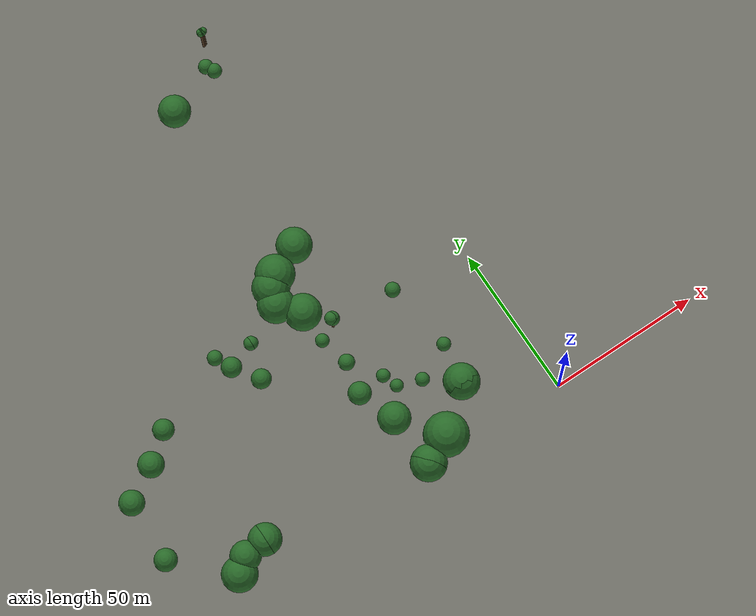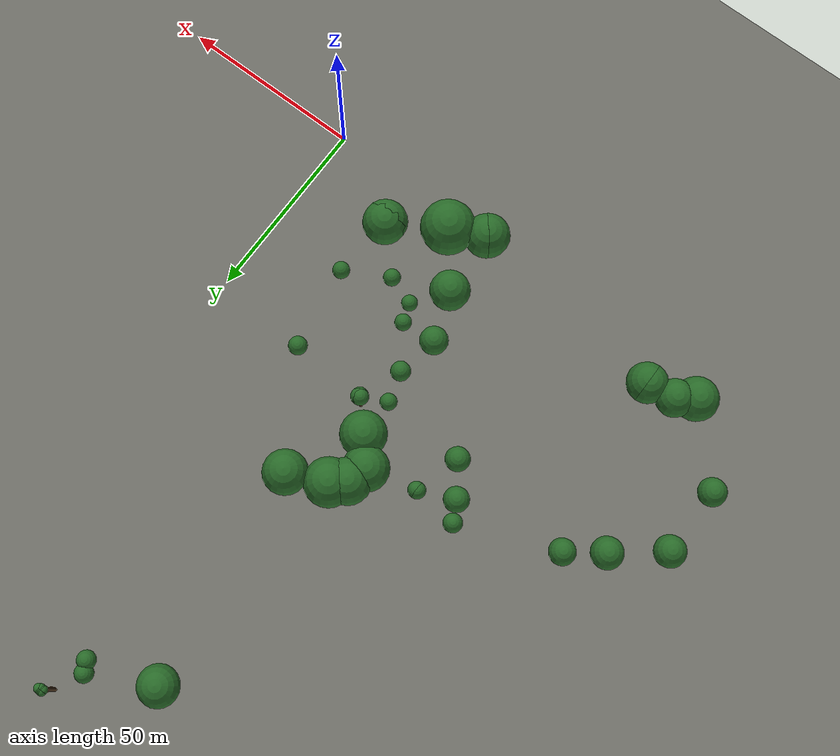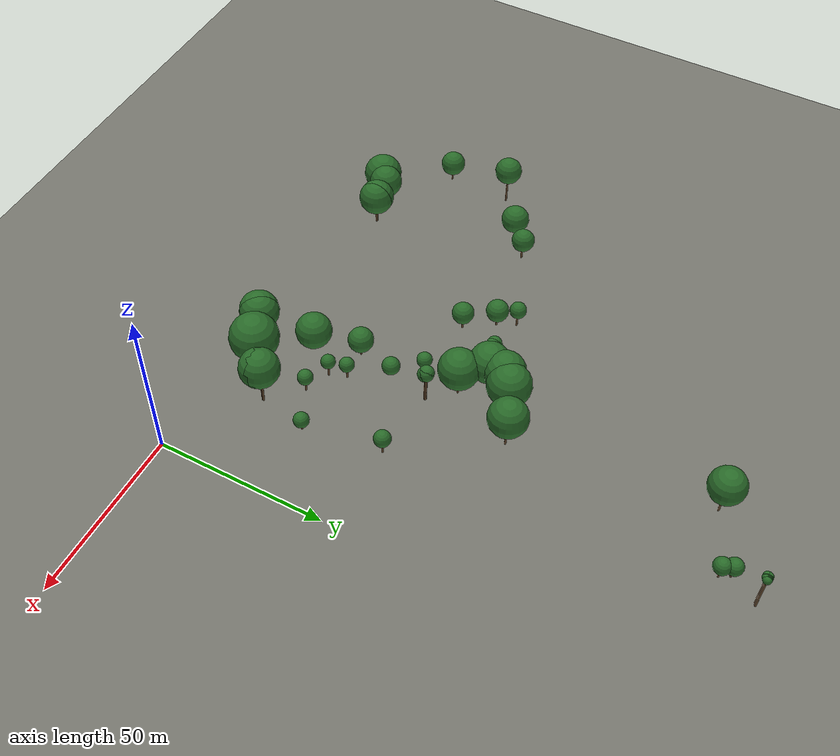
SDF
<sdf version="1.9">
 <world name="uav_arena_bk">
  <model name="ground_plane">
   <static>true</static>
   <link name="link">
    <collision name="collision">
     <geometry><plane><normal>0 0 1</normal><size>1200 1200</size></plane></geometry>
    </collision>
    <visual name="visual">
     <geometry><plane><normal>0 0 1</normal><size>1200 1200</size></plane></geometry>
     <material><ambient>0.35 0.35 0.33 1</ambient><diffuse>0.45 0.45 0.42 1</diffuse></material>
    </visual>
   </link>
  </model>
  <model name="tree_017">
   <static>true</static>
   <pose>-31.558 156.305 0 0 0 0</pose>
   <link name="link">
    <collision name="trunk_collision">
     <pose>0 0 5.820 0 0 0</pose>
     <geometry><cylinder><radius>0.30</radius><length>11.640</length></cylinder></geometry>
    </collision>
    <visual name="trunk_visual">
     <pose>0 0 5.820 0 0 0</pose>
     <geometry><cylinder><radius>0.30</radius><length>11.640</length></cylinder></geometry>
     <material><ambient>0.25 0.18 0.11 1</ambient><diffuse>0.35 0.25 0.15 1</diffuse></material>
    </visual>
    <collision name="canopy_collision">
     <pose>0 0 12.890 0 0 0</pose>
     <geometry><sphere><radius>1.250</radius></sphere></geometry>
    </collision>
    <visual name="canopy_visual">
     <pose>0 0 12.890 0 0 0</pose>
     <geometry><sphere><radius>1.250</radius></sphere></geometry>
     <material><ambient>0.10 0.28 0.10 1</ambient><diffuse>0.16 0.42 0.16 1</diffuse></material>
     <plugin filename="gz-sim-label-system" name="gz::sim::systems::Label"><label>2</label></plugin>
    </visual>
   </link>
  </model>
  <model name="tree_018">
   <static>true</static>
   <pose>-31.308 156.304 0 0 0 0</pose>
   <link name="link">
    <collision name="trunk_collision">
     <pose>0 0 5.820 0 0 0</pose>
     <geometry><cylinder><radius>0.30</radius><length>11.640</length></cylinder></geometry>
    </collision>
    <visual name="trunk_visual">
     <pose>0 0 5.820 0 0 0</pose>
     <geometry><cylinder><radius>0.30</radius><length>11.640</length></cylinder></geometry>
     <material><ambient>0.25 0.18 0.11 1</ambient><diffuse>0.35 0.25 0.15 1</diffuse></material>
    </visual>
    <collision name="canopy_collision">
     <pose>0 0 12.890 0 0 0</pose>
     <geometry><sphere><radius>1.250</radius></sphere></geometry>
    </collision>
    <visual name="canopy_visual">
     <pose>0 0 12.890 0 0 0</pose>
     <geometry><sphere><radius>1.250</radius></sphere></geometry>
     <material><ambient>0.10 0.28 0.10 1</ambient><diffuse>0.16 0.42 0.16 1</diffuse></material>
     <plugin filename="gz-sim-label-system" name="gz::sim::systems::Label"><label>2</label></plugin>
    </visual>
   </link>
  </model>
  <model name="tree_019">
   <static>true</static>
   <pose>-31.058 156.303 0 0 0 0</pose>
   <link name="link">
    <collision name="trunk_collision">
     <pose>0 0 5.820 0 0 0</pose>
     <geometry><cylinder><radius>0.30</radius><length>11.640</length></cylinder></geometry>
    </collision>
    <visual name="trunk_visual">
     <pose>0 0 5.820 0 0 0</pose>
     <geometry><cylinder><radius>0.30</radius><length>11.640</length></cylinder></geometry>
     <material><ambient>0.25 0.18 0.11 1</ambient><diffuse>0.35 0.25 0.15 1</diffuse></material>
    </visual>
    <collision name="canopy_collision">
     <pose>0 0 12.890 0 0 0</pose>
     <geometry><sphere><radius>1.250</radius></sphere></geometry>
    </collision>
    <visual name="canopy_visual">
     <pose>0 0 12.890 0 0 0</pose>
     <geometry><sphere><radius>1.250</radius></sphere></geometry>
     <material><ambient>0.10 0.28 0.10 1</ambient><diffuse>0.16 0.42 0.16 1</diffuse></material>
     <plugin filename="gz-sim-label-system" name="gz::sim::systems::Label"><label>2</label></plugin>
    </visual>
   </link>
  </model>
  <model name="tree_020">
   <static>true</static>
   <pose>-30.808 156.301 0 0 0 0</pose>
   <link name="link">
    <collision name="trunk_collision">
     <pose>0 0 5.820 0 0 0</pose>
     <geometry><cylinder><radius>0.30</radius><length>11.640</length></cylinder></geometry>
    </collision>
    <visual name="trunk_visual">
     <pose>0 0 5.820 0 0 0</pose>
     <geometry><cylinder><radius>0.30</radius><length>11.640</length></cylinder></geometry>
     <material><ambient>0.25 0.18 0.11 1</ambient><diffuse>0.35 0.25 0.15 1</diffuse></material>
    </visual>
    <collision name="canopy_collision">
     <pose>0 0 12.890 0 0 0</pose>
     <geometry><sphere><radius>1.250</radius></sphere></geometry>
    </collision>
    <visual name="canopy_visual">
     <pose>0 0 12.890 0 0 0</pose>
     <geometry><sphere><radius>1.250</radius></sphere></geometry>
     <material><ambient>0.10 0.28 0.10 1</ambient><diffuse>0.16 0.42 0.16 1</diffuse></material>
     <plugin filename="gz-sim-label-system" name="gz::sim::systems::Label"><label>2</label></plugin>
    </visual>
   </link>
  </model>
  <model name="tree_021">
   <static>true</static>
   <pose>-30.558 156.300 0 0 0 0</pose>
   <link name="link">
    <collision name="trunk_collision">
     <pose>0 0 5.820 0 0 0</pose>
     <geometry><cylinder><radius>0.30</radius><length>11.640</length></cylinder></geometry>
    </collision>
    <visual name="trunk_visual">
     <pose>0 0 5.820 0 0 0</pose>
     <geometry><cylinder><radius>0.30</radius><length>11.640</length></cylinder></geometry>
     <material><ambient>0.25 0.18 0.11 1</ambient><diffuse>0.35 0.25 0.15 1</diffuse></material>
    </visual>
    <collision name="canopy_collision">
     <pose>0 0 12.890 0 0 0</pose>
     <geometry><sphere><radius>1.250</radius></sphere></geometry>
    </collision>
    <visual name="canopy_visual">
     <pose>0 0 12.890 0 0 0</pose>
     <geometry><sphere><radius>1.250</radius></sphere></geometry>
     <material><ambient>0.10 0.28 0.10 1</ambient><diffuse>0.16 0.42 0.16 1</diffuse></material>
     <plugin filename="gz-sim-label-system" name="gz::sim::systems::Label"><label>2</label></plugin>
    </visual>
   </link>
  </model>
  <model name="tree_022">
   <static>true</static>
   <pose>-31.560 156.055 0 0 0 0</pose>
   <link name="link">
    <collision name="trunk_collision">
     <pose>0 0 5.820 0 0 0</pose>
     <geometry><cylinder><radius>0.30</radius><length>11.640</length></cylinder></geometry>
    </collision>
    <visual name="trunk_visual">
     <pose>0 0 5.820 0 0 0</pose>
     <geometry><cylinder><radius>0.30</radius><length>11.640</length></cylinder></geometry>
     <material><ambient>0.25 0.18 0.11 1</ambient><diffuse>0.35 0.25 0.15 1</diffuse></material>
    </visual>
    <collision name="canopy_collision">
     <pose>0 0 12.890 0 0 0</pose>
     <geometry><sphere><radius>1.250</radius></sphere></geometry>
    </collision>
    <visual name="canopy_visual">
     <pose>0 0 12.890 0 0 0</pose>
     <geometry><sphere><radius>1.250</radius></sphere></geometry>
     <material><ambient>0.10 0.28 0.10 1</ambient><diffuse>0.16 0.42 0.16 1</diffuse></material>
     <plugin filename="gz-sim-label-system" name="gz::sim::systems::Label"><label>2</label></plugin>
    </visual>
   </link>
  </model>
  <model name="tree_023">
   <static>true</static>
   <pose>-31.310 156.054 0 0 0 0</pose>
   <link name="link">
    <collision name="trunk_collision">
     <pose>0 0 5.820 0 0 0</pose>
     <geometry><cylinder><radius>0.30</radius><length>11.640</length></cylinder></geometry>
    </collision>
    <visual name="trunk_visual">
     <pose>0 0 5.820 0 0 0</pose>
     <geometry><cylinder><radius>0.30</radius><length>11.640</length></cylinder></geometry>
     <material><ambient>0.25 0.18 0.11 1</ambient><diffuse>0.35 0.25 0.15 1</diffuse></material>
    </visual>
    <collision name="canopy_collision">
     <pose>0 0 12.890 0 0 0</pose>
     <geometry><sphere><radius>1.250</radius></sphere></geometry>
    </collision>
    <visual name="canopy_visual">
     <pose>0 0 12.890 0 0 0</pose>
     <geometry><sphere><radius>1.250</radius></sphere></geometry>
     <material><ambient>0.10 0.28 0.10 1</ambient><diffuse>0.16 0.42 0.16 1</diffuse></material>
     <plugin filename="gz-sim-label-system" name="gz::sim::systems::Label"><label>2</label></plugin>
    </visual>
   </link>
  </model>
  <model name="tree_024">
   <static>true</static>
   <pose>-31.060 156.053 0 0 0 0</pose>
   <link name="link">
    <collision name="trunk_collision">
     <pose>0 0 5.820 0 0 0</pose>
     <geometry><cylinder><radius>0.30</radius><length>11.640</length></cylinder></geometry>
    </collision>
    <visual name="trunk_visual">
     <pose>0 0 5.820 0 0 0</pose>
     <geometry><cylinder><radius>0.30</radius><length>11.640</length></cylinder></geometry>
     <material><ambient>0.25 0.18 0.11 1</ambient><diffuse>0.35 0.25 0.15 1</diffuse></material>
    </visual>
    <collision name="canopy_collision">
     <pose>0 0 12.890 0 0 0</pose>
     <geometry><sphere><radius>1.250</radius></sphere></geometry>
    </collision>
    <visual name="canopy_visual">
     <pose>0 0 12.890 0 0 0</pose>
     <geometry><sphere><radius>1.250</radius></sphere></geometry>
     <material><ambient>0.10 0.28 0.10 1</ambient><diffuse>0.16 0.42 0.16 1</diffuse></material>
     <plugin filename="gz-sim-label-system" name="gz::sim::systems::Label"><label>2</label></plugin>
    </visual>
   </link>
  </model>
  <model name="tree_030">
   <static>true</static>
   <pose>-35.351 148.326 0 0 0 0</pose>
   <link name="link">
    <collision name="trunk_collision">
     <pose>0 0 1.250 0 0 0</pose>
     <geometry><cylinder><radius>0.30</radius><length>2.500</length></cylinder></geometry>
    </collision>
    <visual name="trunk_visual">
     <pose>0 0 1.250 0 0 0</pose>
     <geometry><cylinder><radius>0.30</radius><length>2.500</length></cylinder></geometry>
     <material><ambient>0.25 0.18 0.11 1</ambient><diffuse>0.35 0.25 0.15 1</diffuse></material>
    </visual>
    <collision name="canopy_collision">
     <pose>0 0 4.960 0 0 0</pose>
     <geometry><sphere><radius>2.460</radius></sphere></geometry>
    </collision>
    <visual name="canopy_visual">
     <pose>0 0 4.960 0 0 0</pose>
     <geometry><sphere><radius>2.460</radius></sphere></geometry>
     <material><ambient>0.10 0.28 0.10 1</ambient><diffuse>0.16 0.42 0.16 1</diffuse></material>
     <plugin filename="gz-sim-label-system" name="gz::sim::systems::Label"><label>2</label></plugin>
    </visual>
   </link>
  </model>
  <model name="tree_031">
   <static>true</static>
   <pose>-33.866 145.568 0 0 0 0</pose>
   <link name="link">
    <collision name="trunk_collision">
     <pose>0 0 1.405 0 0 0</pose>
     <geometry><cylinder><radius>0.30</radius><length>2.810</length></cylinder></geometry>
    </collision>
    <visual name="trunk_visual">
     <pose>0 0 1.405 0 0 0</pose>
     <geometry><cylinder><radius>0.30</radius><length>2.810</length></cylinder></geometry>
     <material><ambient>0.25 0.18 0.11 1</ambient><diffuse>0.35 0.25 0.15 1</diffuse></material>
    </visual>
    <collision name="canopy_collision">
     <pose>0 0 5.270 0 0 0</pose>
     <geometry><sphere><radius>2.460</radius></sphere></geometry>
    </collision>
    <visual name="canopy_visual">
     <pose>0 0 5.270 0 0 0</pose>
     <geometry><sphere><radius>2.460</radius></sphere></geometry>
     <material><ambient>0.10 0.28 0.10 1</ambient><diffuse>0.16 0.42 0.16 1</diffuse></material>
     <plugin filename="gz-sim-label-system" name="gz::sim::systems::Label"><label>2</label></plugin>
    </visual>
   </link>
  </model>
  <model name="tree_033">
   <static>true</static>
   <pose>-52.401 139.168 0 0 0 0</pose>
   <link name="link">
    <collision name="trunk_collision">
     <pose>0 0 3.230 0 0 0</pose>
     <geometry><cylinder><radius>0.30</radius><length>6.460</length></cylinder></geometry>
    </collision>
    <visual name="trunk_visual">
     <pose>0 0 3.230 0 0 0</pose>
     <geometry><cylinder><radius>0.30</radius><length>6.460</length></cylinder></geometry>
     <material><ambient>0.25 0.18 0.11 1</ambient><diffuse>0.35 0.25 0.15 1</diffuse></material>
    </visual>
    <collision name="canopy_collision">
     <pose>0 0 11.730 0 0 0</pose>
     <geometry><sphere><radius>5.270</radius></sphere></geometry>
    </collision>
    <visual name="canopy_visual">
     <pose>0 0 11.730 0 0 0</pose>
     <geometry><sphere><radius>5.270</radius></sphere></geometry>
     <material><ambient>0.10 0.28 0.10 1</ambient><diffuse>0.16 0.42 0.16 1</diffuse></material>
     <plugin filename="gz-sim-label-system" name="gz::sim::systems::Label"><label>2</label></plugin>
    </visual>
   </link>
  </model>
  <model name="tree_060">
   <static>true</static>
   <pose>-44.964 81.377 0 0 0 0</pose>
   <link name="link">
    <collision name="trunk_collision">
     <pose>0 0 3.035 0 0 0</pose>
     <geometry><cylinder><radius>0.30</radius><length>6.070</length></cylinder></geometry>
    </collision>
    <visual name="trunk_visual">
     <pose>0 0 3.035 0 0 0</pose>
     <geometry><cylinder><radius>0.30</radius><length>6.070</length></cylinder></geometry>
     <material><ambient>0.25 0.18 0.11 1</ambient><diffuse>0.35 0.25 0.15 1</diffuse></material>
    </visual>
    <collision name="canopy_collision">
     <pose>0 0 11.880 0 0 0</pose>
     <geometry><sphere><radius>5.810</radius></sphere></geometry>
    </collision>
    <visual name="canopy_visual">
     <pose>0 0 11.880 0 0 0</pose>
     <geometry><sphere><radius>5.810</radius></sphere></geometry>
     <material><ambient>0.10 0.28 0.10 1</ambient><diffuse>0.16 0.42 0.16 1</diffuse></material>
     <plugin filename="gz-sim-label-system" name="gz::sim::systems::Label"><label>2</label></plugin>
    </visual>
   </link>
  </model>
  <model name="tree_062">
   <static>true</static>
   <pose>-54.988 76.932 0 0 0 0</pose>
   <link name="link">
    <collision name="trunk_collision">
     <pose>0 0 2.730 0 0 0</pose>
     <geometry><cylinder><radius>0.30</radius><length>5.460</length></cylinder></geometry>
    </collision>
    <visual name="trunk_visual">
     <pose>0 0 2.730 0 0 0</pose>
     <geometry><cylinder><radius>0.30</radius><length>5.460</length></cylinder></geometry>
     <material><ambient>0.25 0.18 0.11 1</ambient><diffuse>0.35 0.25 0.15 1</diffuse></material>
    </visual>
    <collision name="canopy_collision">
     <pose>0 0 11.850 0 0 0</pose>
     <geometry><sphere><radius>6.390</radius></sphere></geometry>
    </collision>
    <visual name="canopy_visual">
     <pose>0 0 11.850 0 0 0</pose>
     <geometry><sphere><radius>6.390</radius></sphere></geometry>
     <material><ambient>0.10 0.28 0.10 1</ambient><diffuse>0.16 0.42 0.16 1</diffuse></material>
     <plugin filename="gz-sim-label-system" name="gz::sim::systems::Label"><label>2</label></plugin>
    </visual>
   </link>
  </model>
  <model name="tree_063">
   <static>true</static>
   <pose>-58.505 73.951 0 0 0 0</pose>
   <link name="link">
    <collision name="trunk_collision">
     <pose>0 0 2.895 0 0 0</pose>
     <geometry><cylinder><radius>0.30</radius><length>5.790</length></cylinder></geometry>
    </collision>
    <visual name="trunk_visual">
     <pose>0 0 2.895 0 0 0</pose>
     <geometry><cylinder><radius>0.30</radius><length>5.790</length></cylinder></geometry>
     <material><ambient>0.25 0.18 0.11 1</ambient><diffuse>0.35 0.25 0.15 1</diffuse></material>
    </visual>
    <collision name="canopy_collision">
     <pose>0 0 11.840 0 0 0</pose>
     <geometry><sphere><radius>6.050</radius></sphere></geometry>
    </collision>
    <visual name="canopy_visual">
     <pose>0 0 11.840 0 0 0</pose>
     <geometry><sphere><radius>6.050</radius></sphere></geometry>
     <material><ambient>0.10 0.28 0.10 1</ambient><diffuse>0.16 0.42 0.16 1</diffuse></material>
     <plugin filename="gz-sim-label-system" name="gz::sim::systems::Label"><label>2</label></plugin>
    </visual>
   </link>
  </model>
  <model name="tree_064">
   <static>true</static>
   <pose>-60.033 68.709 0 0 0 0</pose>
   <link name="link">
    <collision name="trunk_collision">
     <pose>0 0 2.540 0 0 0</pose>
     <geometry><cylinder><radius>0.30</radius><length>5.080</length></cylinder></geometry>
    </collision>
    <visual name="trunk_visual">
     <pose>0 0 2.540 0 0 0</pose>
     <geometry><cylinder><radius>0.30</radius><length>5.080</length></cylinder></geometry>
     <material><ambient>0.25 0.18 0.11 1</ambient><diffuse>0.35 0.25 0.15 1</diffuse></material>
    </visual>
    <collision name="canopy_collision">
     <pose>0 0 11.080 0 0 0</pose>
     <geometry><sphere><radius>6.000</radius></sphere></geometry>
    </collision>
    <visual name="canopy_visual">
     <pose>0 0 11.080 0 0 0</pose>
     <geometry><sphere><radius>6.000</radius></sphere></geometry>
     <material><ambient>0.10 0.28 0.10 1</ambient><diffuse>0.16 0.42 0.16 1</diffuse></material>
     <plugin filename="gz-sim-label-system" name="gz::sim::systems::Label"><label>2</label></plugin>
    </visual>
   </link>
  </model>
  <model name="tree_066">
   <static>true</static>
   <pose>-84.797 66.093 0 0 0 0</pose>
   <link name="link">
    <collision name="trunk_collision">
     <pose>0 0 2.000 0 0 0</pose>
     <geometry><cylinder><radius>0.30</radius><length>4.000</length></cylinder></geometry>
    </collision>
    <visual name="trunk_visual">
     <pose>0 0 2.000 0 0 0</pose>
     <geometry><cylinder><radius>0.30</radius><length>4.000</length></cylinder></geometry>
     <material><ambient>0.25 0.18 0.11 1</ambient><diffuse>0.35 0.25 0.15 1</diffuse></material>
    </visual>
    <collision name="canopy_collision">
     <pose>0 0 6.500 0 0 0</pose>
     <geometry><sphere><radius>2.500</radius></sphere></geometry>
    </collision>
    <visual name="canopy_visual">
     <pose>0 0 6.500 0 0 0</pose>
     <geometry><sphere><radius>2.500</radius></sphere></geometry>
     <material><ambient>0.10 0.28 0.10 1</ambient><diffuse>0.16 0.42 0.16 1</diffuse></material>
     <plugin filename="gz-sim-label-system" name="gz::sim::systems::Label"><label>2</label></plugin>
    </visual>
   </link>
  </model>
  <model name="tree_067">
   <static>true</static>
   <pose>-72.806 64.528 0 0 0 0</pose>
   <link name="link">
    <collision name="trunk_collision">
     <pose>0 0 0.505 0 0 0</pose>
     <geometry><cylinder><radius>0.30</radius><length>1.010</length></cylinder></geometry>
    </collision>
    <visual name="trunk_visual">
     <pose>0 0 0.505 0 0 0</pose>
     <geometry><cylinder><radius>0.30</radius><length>1.010</length></cylinder></geometry>
     <material><ambient>0.25 0.18 0.11 1</ambient><diffuse>0.35 0.25 0.15 1</diffuse></material>
    </visual>
    <collision name="canopy_collision">
     <pose>0 0 3.250 0 0 0</pose>
     <geometry><sphere><radius>2.240</radius></sphere></geometry>
    </collision>
    <visual name="canopy_visual">
     <pose>0 0 3.250 0 0 0</pose>
     <geometry><sphere><radius>2.240</radius></sphere></geometry>
     <material><ambient>0.10 0.28 0.10 1</ambient><diffuse>0.16 0.42 0.16 1</diffuse></material>
     <plugin filename="gz-sim-label-system" name="gz::sim::systems::Label"><label>2</label></plugin>
    </visual>
   </link>
  </model>
  <model name="tree_068">
   <static>true</static>
   <pose>-72.556 64.527 0 0 0 0</pose>
   <link name="link">
    <collision name="trunk_collision">
     <pose>0 0 0.500 0 0 0</pose>
     <geometry><cylinder><radius>0.30</radius><length>1.000</length></cylinder></geometry>
    </collision>
    <visual name="trunk_visual">
     <pose>0 0 0.500 0 0 0</pose>
     <geometry><cylinder><radius>0.30</radius><length>1.000</length></cylinder></geometry>
     <material><ambient>0.25 0.18 0.11 1</ambient><diffuse>0.35 0.25 0.15 1</diffuse></material>
    </visual>
    <collision name="canopy_collision">
     <pose>0 0 3.240 0 0 0</pose>
     <geometry><sphere><radius>2.240</radius></sphere></geometry>
    </collision>
    <visual name="canopy_visual">
     <pose>0 0 3.240 0 0 0</pose>
     <geometry><sphere><radius>2.240</radius></sphere></geometry>
     <material><ambient>0.10 0.28 0.10 1</ambient><diffuse>0.16 0.42 0.16 1</diffuse></material>
     <plugin filename="gz-sim-label-system" name="gz::sim::systems::Label"><label>2</label></plugin>
    </visual>
   </link>
  </model>
  <model name="tree_069">
   <static>true</static>
   <pose>-54.318 62.178 0 0 0 0</pose>
   <link name="link">
    <collision name="trunk_collision">
     <pose>0 0 2.255 0 0 0</pose>
     <geometry><cylinder><radius>0.30</radius><length>4.510</length></cylinder></geometry>
    </collision>
    <visual name="trunk_visual">
     <pose>0 0 2.255 0 0 0</pose>
     <geometry><cylinder><radius>0.30</radius><length>4.510</length></cylinder></geometry>
     <material><ambient>0.25 0.18 0.11 1</ambient><diffuse>0.35 0.25 0.15 1</diffuse></material>
    </visual>
    <collision name="canopy_collision">
     <pose>0 0 10.530 0 0 0</pose>
     <geometry><sphere><radius>6.020</radius></sphere></geometry>
    </collision>
    <visual name="canopy_visual">
     <pose>0 0 10.530 0 0 0</pose>
     <geometry><sphere><radius>6.020</radius></sphere></geometry>
     <material><ambient>0.10 0.28 0.10 1</ambient><diffuse>0.16 0.42 0.16 1</diffuse></material>
     <plugin filename="gz-sim-label-system" name="gz::sim::systems::Label"><label>2</label></plugin>
    </visual>
   </link>
  </model>
  <model name="tree_070">
   <static>true</static>
   <pose>-82.076 60.828 0 0 0 0</pose>
   <link name="link">
    <collision name="trunk_collision">
     <pose>0 0 1.415 0 0 0</pose>
     <geometry><cylinder><radius>0.30</radius><length>2.830</length></cylinder></geometry>
    </collision>
    <visual name="trunk_visual">
     <pose>0 0 1.415 0 0 0</pose>
     <geometry><cylinder><radius>0.30</radius><length>2.830</length></cylinder></geometry>
     <material><ambient>0.25 0.18 0.11 1</ambient><diffuse>0.35 0.25 0.15 1</diffuse></material>
    </visual>
    <collision name="canopy_collision">
     <pose>0 0 6.170 0 0 0</pose>
     <geometry><sphere><radius>3.340</radius></sphere></geometry>
    </collision>
    <visual name="canopy_visual">
     <pose>0 0 6.170 0 0 0</pose>
     <geometry><sphere><radius>3.340</radius></sphere></geometry>
     <material><ambient>0.10 0.28 0.10 1</ambient><diffuse>0.16 0.42 0.16 1</diffuse></material>
     <plugin filename="gz-sim-label-system" name="gz::sim::systems::Label"><label>2</label></plugin>
    </visual>
   </link>
  </model>
  <model name="tree_076">
   <static>true</static>
   <pose>-110.354 55.731 0 0 0 0</pose>
   <link name="link">
    <collision name="trunk_collision">
     <pose>0 0 1.895 0 0 0</pose>
     <geometry><cylinder><radius>0.30</radius><length>3.790</length></cylinder></geometry>
    </collision>
    <visual name="trunk_visual">
     <pose>0 0 1.895 0 0 0</pose>
     <geometry><cylinder><radius>0.30</radius><length>3.790</length></cylinder></geometry>
     <material><ambient>0.25 0.18 0.11 1</ambient><diffuse>0.35 0.25 0.15 1</diffuse></material>
    </visual>
    <collision name="canopy_collision">
     <pose>0 0 7.270 0 0 0</pose>
     <geometry><sphere><radius>3.480</radius></sphere></geometry>
    </collision>
    <visual name="canopy_visual">
     <pose>0 0 7.270 0 0 0</pose>
     <geometry><sphere><radius>3.480</radius></sphere></geometry>
     <material><ambient>0.10 0.28 0.10 1</ambient><diffuse>0.16 0.42 0.16 1</diffuse></material>
     <plugin filename="gz-sim-label-system" name="gz::sim::systems::Label"><label>2</label></plugin>
    </visual>
   </link>
  </model>
  <model name="tree_077">
   <static>true</static>
   <pose>-48.105 55.394 0 0 0 0</pose>
   <link name="link">
    <collision name="trunk_collision">
     <pose>0 0 4.615 0 0 0</pose>
     <geometry><cylinder><radius>0.30</radius><length>9.230</length></cylinder></geometry>
    </collision>
    <visual name="trunk_visual">
     <pose>0 0 4.615 0 0 0</pose>
     <geometry><cylinder><radius>0.30</radius><length>9.230</length></cylinder></geometry>
     <material><ambient>0.25 0.18 0.11 1</ambient><diffuse>0.35 0.25 0.15 1</diffuse></material>
    </visual>
    <collision name="canopy_collision">
     <pose>0 0 11.470 0 0 0</pose>
     <geometry><sphere><radius>2.240</radius></sphere></geometry>
    </collision>
    <visual name="canopy_visual">
     <pose>0 0 11.470 0 0 0</pose>
     <geometry><sphere><radius>2.240</radius></sphere></geometry>
     <material><ambient>0.10 0.28 0.10 1</ambient><diffuse>0.16 0.42 0.16 1</diffuse></material>
     <plugin filename="gz-sim-label-system" name="gz::sim::systems::Label"><label>2</label></plugin>
    </visual>
   </link>
  </model>
  <model name="tree_078">
   <static>true</static>
   <pose>-47.855 55.393 0 0 0 0</pose>
   <link name="link">
    <collision name="trunk_collision">
     <pose>0 0 4.540 0 0 0</pose>
     <geometry><cylinder><radius>0.30</radius><length>9.080</length></cylinder></geometry>
    </collision>
    <visual name="trunk_visual">
     <pose>0 0 4.540 0 0 0</pose>
     <geometry><cylinder><radius>0.30</radius><length>9.080</length></cylinder></geometry>
     <material><ambient>0.25 0.18 0.11 1</ambient><diffuse>0.35 0.25 0.15 1</diffuse></material>
    </visual>
    <collision name="canopy_collision">
     <pose>0 0 11.320 0 0 0</pose>
     <geometry><sphere><radius>2.240</radius></sphere></geometry>
    </collision>
    <visual name="canopy_visual">
     <pose>0 0 11.320 0 0 0</pose>
     <geometry><sphere><radius>2.240</radius></sphere></geometry>
     <material><ambient>0.10 0.28 0.10 1</ambient><diffuse>0.16 0.42 0.16 1</diffuse></material>
     <plugin filename="gz-sim-label-system" name="gz::sim::systems::Label"><label>2</label></plugin>
    </visual>
   </link>
  </model>
  <model name="tree_079">
   <static>true</static>
   <pose>-47.856 55.143 0 0 0 0</pose>
   <link name="link">
    <collision name="trunk_collision">
     <pose>0 0 4.440 0 0 0</pose>
     <geometry><cylinder><radius>0.30</radius><length>8.880</length></cylinder></geometry>
    </collision>
    <visual name="trunk_visual">
     <pose>0 0 4.440 0 0 0</pose>
     <geometry><cylinder><radius>0.30</radius><length>8.880</length></cylinder></geometry>
     <material><ambient>0.25 0.18 0.11 1</ambient><diffuse>0.35 0.25 0.15 1</diffuse></material>
    </visual>
    <collision name="canopy_collision">
     <pose>0 0 11.120 0 0 0</pose>
     <geometry><sphere><radius>2.240</radius></sphere></geometry>
    </collision>
    <visual name="canopy_visual">
     <pose>0 0 11.120 0 0 0</pose>
     <geometry><sphere><radius>2.240</radius></sphere></geometry>
     <material><ambient>0.10 0.28 0.10 1</ambient><diffuse>0.16 0.42 0.16 1</diffuse></material>
     <plugin filename="gz-sim-label-system" name="gz::sim::systems::Label"><label>2</label></plugin>
    </visual>
   </link>
  </model>
  <model name="tree_080">
   <static>true</static>
   <pose>-26.615 53.528 0 0 0 0</pose>
   <link name="link">
    <collision name="trunk_collision">
     <pose>0 0 1.810 0 0 0</pose>
     <geometry><cylinder><radius>0.30</radius><length>3.620</length></cylinder></geometry>
    </collision>
    <visual name="trunk_visual">
     <pose>0 0 1.810 0 0 0</pose>
     <geometry><cylinder><radius>0.30</radius><length>3.620</length></cylinder></geometry>
     <material><ambient>0.25 0.18 0.11 1</ambient><diffuse>0.35 0.25 0.15 1</diffuse></material>
    </visual>
    <collision name="canopy_collision">
     <pose>0 0 6.120 0 0 0</pose>
     <geometry><sphere><radius>2.500</radius></sphere></geometry>
    </collision>
    <visual name="canopy_visual">
     <pose>0 0 6.120 0 0 0</pose>
     <geometry><sphere><radius>2.500</radius></sphere></geometry>
     <material><ambient>0.10 0.28 0.10 1</ambient><diffuse>0.16 0.42 0.16 1</diffuse></material>
     <plugin filename="gz-sim-label-system" name="gz::sim::systems::Label"><label>2</label></plugin>
    </visual>
   </link>
  </model>
  <model name="tree_081">
   <static>true</static>
   <pose>-76.371 52.547 0 0 0 0</pose>
   <link name="link">
    <collision name="trunk_collision">
     <pose>0 0 1.535 0 0 0</pose>
     <geometry><cylinder><radius>0.30</radius><length>3.070</length></cylinder></geometry>
    </collision>
    <visual name="trunk_visual">
     <pose>0 0 1.535 0 0 0</pose>
     <geometry><cylinder><radius>0.30</radius><length>3.070</length></cylinder></geometry>
     <material><ambient>0.25 0.18 0.11 1</ambient><diffuse>0.35 0.25 0.15 1</diffuse></material>
    </visual>
    <collision name="canopy_collision">
     <pose>0 0 6.320 0 0 0</pose>
     <geometry><sphere><radius>3.250</radius></sphere></geometry>
    </collision>
    <visual name="canopy_visual">
     <pose>0 0 6.320 0 0 0</pose>
     <geometry><sphere><radius>3.250</radius></sphere></geometry>
     <material><ambient>0.10 0.28 0.10 1</ambient><diffuse>0.16 0.42 0.16 1</diffuse></material>
     <plugin filename="gz-sim-label-system" name="gz::sim::systems::Label"><label>2</label></plugin>
    </visual>
   </link>
  </model>
  <model name="tree_082">
   <static>true</static>
   <pose>-54.125 51.677 0 0 0 0</pose>
   <link name="link">
    <collision name="trunk_collision">
     <pose>0 0 3.145 0 0 0</pose>
     <geometry><cylinder><radius>0.30</radius><length>6.290</length></cylinder></geometry>
    </collision>
    <visual name="trunk_visual">
     <pose>0 0 3.145 0 0 0</pose>
     <geometry><cylinder><radius>0.30</radius><length>6.290</length></cylinder></geometry>
     <material><ambient>0.25 0.18 0.11 1</ambient><diffuse>0.35 0.25 0.15 1</diffuse></material>
    </visual>
    <collision name="canopy_collision">
     <pose>0 0 8.530 0 0 0</pose>
     <geometry><sphere><radius>2.240</radius></sphere></geometry>
    </collision>
    <visual name="canopy_visual">
     <pose>0 0 8.530 0 0 0</pose>
     <geometry><sphere><radius>2.240</radius></sphere></geometry>
     <material><ambient>0.10 0.28 0.10 1</ambient><diffuse>0.16 0.42 0.16 1</diffuse></material>
     <plugin filename="gz-sim-label-system" name="gz::sim::systems::Label"><label>2</label></plugin>
    </visual>
   </link>
  </model>
  <model name="tree_083">
   <static>true</static>
   <pose>-119.390 49.030 0 0 0 0</pose>
   <link name="link">
    <collision name="trunk_collision">
     <pose>0 0 0.500 0 0 0</pose>
     <geometry><cylinder><radius>0.30</radius><length>1.000</length></cylinder></geometry>
    </collision>
    <visual name="trunk_visual">
     <pose>0 0 0.500 0 0 0</pose>
     <geometry><cylinder><radius>0.30</radius><length>1.000</length></cylinder></geometry>
     <material><ambient>0.25 0.18 0.11 1</ambient><diffuse>0.35 0.25 0.15 1</diffuse></material>
    </visual>
    <collision name="canopy_collision">
     <pose>0 0 5.250 0 0 0</pose>
     <geometry><sphere><radius>4.250</radius></sphere></geometry>
    </collision>
    <visual name="canopy_visual">
     <pose>0 0 5.250 0 0 0</pose>
     <geometry><sphere><radius>4.250</radius></sphere></geometry>
     <material><ambient>0.10 0.28 0.10 1</ambient><diffuse>0.16 0.42 0.16 1</diffuse></material>
     <plugin filename="gz-sim-label-system" name="gz::sim::systems::Label"><label>2</label></plugin>
    </visual>
   </link>
  </model>
  <model name="tree_086">
   <static>true</static>
   <pose>-51.174 42.661 0 0 0 0</pose>
   <link name="link">
    <collision name="trunk_collision">
     <pose>0 0 0.500 0 0 0</pose>
     <geometry><cylinder><radius>0.30</radius><length>1.000</length></cylinder></geometry>
    </collision>
    <visual name="trunk_visual">
     <pose>0 0 0.500 0 0 0</pose>
     <geometry><cylinder><radius>0.30</radius><length>1.000</length></cylinder></geometry>
     <material><ambient>0.25 0.18 0.11 1</ambient><diffuse>0.35 0.25 0.15 1</diffuse></material>
    </visual>
    <collision name="canopy_collision">
     <pose>0 0 3.660 0 0 0</pose>
     <geometry><sphere><radius>2.660</radius></sphere></geometry>
    </collision>
    <visual name="canopy_visual">
     <pose>0 0 3.660 0 0 0</pose>
     <geometry><sphere><radius>2.660</radius></sphere></geometry>
     <material><ambient>0.10 0.28 0.10 1</ambient><diffuse>0.16 0.42 0.16 1</diffuse></material>
     <plugin filename="gz-sim-label-system" name="gz::sim::systems::Label"><label>2</label></plugin>
    </visual>
   </link>
  </model>
  <model name="tree_090">
   <static>true</static>
   <pose>-130.684 40.841 0 0 0 0</pose>
   <link name="link">
    <collision name="trunk_collision">
     <pose>0 0 4.255 0 0 0</pose>
     <geometry><cylinder><radius>0.30</radius><length>8.510</length></cylinder></geometry>
    </collision>
    <visual name="trunk_visual">
     <pose>0 0 4.255 0 0 0</pose>
     <geometry><cylinder><radius>0.30</radius><length>8.510</length></cylinder></geometry>
     <material><ambient>0.25 0.18 0.11 1</ambient><diffuse>0.35 0.25 0.15 1</diffuse></material>
    </visual>
    <collision name="canopy_collision">
     <pose>0 0 12.610 0 0 0</pose>
     <geometry><sphere><radius>4.100</radius></sphere></geometry>
    </collision>
    <visual name="canopy_visual">
     <pose>0 0 12.610 0 0 0</pose>
     <geometry><sphere><radius>4.100</radius></sphere></geometry>
     <material><ambient>0.10 0.28 0.10 1</ambient><diffuse>0.16 0.42 0.16 1</diffuse></material>
     <plugin filename="gz-sim-label-system" name="gz::sim::systems::Label"><label>2</label></plugin>
    </visual>
   </link>
  </model>
  <model name="tree_092">
   <static>true</static>
   <pose>-44.230 32.373 0 0 0 0</pose>
   <link name="link">
    <collision name="trunk_collision">
     <pose>0 0 1.685 0 0 0</pose>
     <geometry><cylinder><radius>0.30</radius><length>3.370</length></cylinder></geometry>
    </collision>
    <visual name="trunk_visual">
     <pose>0 0 1.685 0 0 0</pose>
     <geometry><cylinder><radius>0.30</radius><length>3.370</length></cylinder></geometry>
     <material><ambient>0.25 0.18 0.11 1</ambient><diffuse>0.35 0.25 0.15 1</diffuse></material>
    </visual>
    <collision name="canopy_collision">
     <pose>0 0 5.610 0 0 0</pose>
     <geometry><sphere><radius>2.240</radius></sphere></geometry>
    </collision>
    <visual name="canopy_visual">
     <pose>0 0 5.610 0 0 0</pose>
     <geometry><sphere><radius>2.240</radius></sphere></geometry>
     <material><ambient>0.10 0.28 0.10 1</ambient><diffuse>0.16 0.42 0.16 1</diffuse></material>
     <plugin filename="gz-sim-label-system" name="gz::sim::systems::Label"><label>2</label></plugin>
    </visual>
   </link>
  </model>
  <model name="tree_093">
   <static>true</static>
   <pose>-53.483 31.673 0 0 0 0</pose>
   <link name="link">
    <collision name="trunk_collision">
     <pose>0 0 1.305 0 0 0</pose>
     <geometry><cylinder><radius>0.30</radius><length>2.610</length></cylinder></geometry>
    </collision>
    <visual name="trunk_visual">
     <pose>0 0 1.305 0 0 0</pose>
     <geometry><cylinder><radius>0.30</radius><length>2.610</length></cylinder></geometry>
     <material><ambient>0.25 0.18 0.11 1</ambient><diffuse>0.35 0.25 0.15 1</diffuse></material>
    </visual>
    <collision name="canopy_collision">
     <pose>0 0 6.360 0 0 0</pose>
     <geometry><sphere><radius>3.750</radius></sphere></geometry>
    </collision>
    <visual name="canopy_visual">
     <pose>0 0 6.360 0 0 0</pose>
     <geometry><sphere><radius>3.750</radius></sphere></geometry>
     <material><ambient>0.10 0.28 0.10 1</ambient><diffuse>0.16 0.42 0.16 1</diffuse></material>
     <plugin filename="gz-sim-label-system" name="gz::sim::systems::Label"><label>2</label></plugin>
    </visual>
   </link>
  </model>
  <model name="tree_097">
   <static>true</static>
   <pose>-22.740 30.507 0 0 0 0</pose>
   <link name="link">
    <collision name="trunk_collision">
     <pose>0 0 0.880 0 0 0</pose>
     <geometry><cylinder><radius>0.30</radius><length>1.760</length></cylinder></geometry>
    </collision>
    <visual name="trunk_visual">
     <pose>0 0 0.880 0 0 0</pose>
     <geometry><cylinder><radius>0.30</radius><length>1.760</length></cylinder></geometry>
     <material><ambient>0.25 0.18 0.11 1</ambient><diffuse>0.35 0.25 0.15 1</diffuse></material>
    </visual>
    <collision name="canopy_collision">
     <pose>0 0 4.060 0 0 0</pose>
     <geometry><sphere><radius>2.300</radius></sphere></geometry>
    </collision>
    <visual name="canopy_visual">
     <pose>0 0 4.060 0 0 0</pose>
     <geometry><sphere><radius>2.300</radius></sphere></geometry>
     <material><ambient>0.10 0.28 0.10 1</ambient><diffuse>0.16 0.42 0.16 1</diffuse></material>
     <plugin filename="gz-sim-label-system" name="gz::sim::systems::Label"><label>2</label></plugin>
    </visual>
   </link>
  </model>
  <model name="tree_099">
   <static>true</static>
   <pose>-42.507 27.364 0 0 0 0</pose>
   <link name="link">
    <collision name="trunk_collision">
     <pose>0 0 1.870 0 0 0</pose>
     <geometry><cylinder><radius>0.30</radius><length>3.740</length></cylinder></geometry>
    </collision>
    <visual name="trunk_visual">
     <pose>0 0 1.870 0 0 0</pose>
     <geometry><cylinder><radius>0.30</radius><length>3.740</length></cylinder></geometry>
     <material><ambient>0.25 0.18 0.11 1</ambient><diffuse>0.35 0.25 0.15 1</diffuse></material>
    </visual>
    <collision name="canopy_collision">
     <pose>0 0 5.880 0 0 0</pose>
     <geometry><sphere><radius>2.140</radius></sphere></geometry>
    </collision>
    <visual name="canopy_visual">
     <pose>0 0 5.880 0 0 0</pose>
     <geometry><sphere><radius>2.140</radius></sphere></geometry>
     <material><ambient>0.10 0.28 0.10 1</ambient><diffuse>0.16 0.42 0.16 1</diffuse></material>
     <plugin filename="gz-sim-label-system" name="gz::sim::systems::Label"><label>2</label></plugin>
    </visual>
   </link>
  </model>
  <model name="tree_103">
   <static>true</static>
   <pose>-34.772 24.572 0 0 0 0</pose>
   <link name="link">
    <collision name="trunk_collision">
     <pose>0 0 1.720 0 0 0</pose>
     <geometry><cylinder><radius>0.30</radius><length>3.440</length></cylinder></geometry>
    </collision>
    <visual name="trunk_visual">
     <pose>0 0 1.720 0 0 0</pose>
     <geometry><cylinder><radius>0.30</radius><length>3.440</length></cylinder></geometry>
     <material><ambient>0.25 0.18 0.11 1</ambient><diffuse>0.35 0.25 0.15 1</diffuse></material>
    </visual>
    <collision name="canopy_collision">
     <pose>0 0 5.740 0 0 0</pose>
     <geometry><sphere><radius>2.300</radius></sphere></geometry>
    </collision>
    <visual name="canopy_visual">
     <pose>0 0 5.740 0 0 0</pose>
     <geometry><sphere><radius>2.300</radius></sphere></geometry>
     <material><ambient>0.10 0.28 0.10 1</ambient><diffuse>0.16 0.42 0.16 1</diffuse></material>
     <plugin filename="gz-sim-label-system" name="gz::sim::systems::Label"><label>2</label></plugin>
    </visual>
   </link>
  </model>
  <model name="tree_107">
   <static>true</static>
   <pose>-131.540 21.346 0 0 0 0</pose>
   <link name="link">
    <collision name="trunk_collision">
     <pose>0 0 1.455 0 0 0</pose>
     <geometry><cylinder><radius>0.30</radius><length>2.910</length></cylinder></geometry>
    </collision>
    <visual name="trunk_visual">
     <pose>0 0 1.455 0 0 0</pose>
     <geometry><cylinder><radius>0.30</radius><length>2.910</length></cylinder></geometry>
     <material><ambient>0.25 0.18 0.11 1</ambient><diffuse>0.35 0.25 0.15 1</diffuse></material>
    </visual>
    <collision name="canopy_collision">
     <pose>0 0 6.630 0 0 0</pose>
     <geometry><sphere><radius>3.720</radius></sphere></geometry>
    </collision>
    <visual name="canopy_visual">
     <pose>0 0 6.630 0 0 0</pose>
     <geometry><sphere><radius>3.720</radius></sphere></geometry>
     <material><ambient>0.10 0.28 0.10 1</ambient><diffuse>0.16 0.42 0.16 1</diffuse></material>
     <plugin filename="gz-sim-label-system" name="gz::sim::systems::Label"><label>2</label></plugin>
    </visual>
   </link>
  </model>
  <model name="tree_108">
   <static>true</static>
   <pose>-49.053 18.899 0 0 0 0</pose>
   <link name="link">
    <collision name="trunk_collision">
     <pose>0 0 1.270 0 0 0</pose>
     <geometry><cylinder><radius>0.30</radius><length>2.540</length></cylinder></geometry>
    </collision>
    <visual name="trunk_visual">
     <pose>0 0 1.270 0 0 0</pose>
     <geometry><cylinder><radius>0.30</radius><length>2.540</length></cylinder></geometry>
     <material><ambient>0.25 0.18 0.11 1</ambient><diffuse>0.35 0.25 0.15 1</diffuse></material>
    </visual>
    <collision name="canopy_collision">
     <pose>0 0 7.840 0 0 0</pose>
     <geometry><sphere><radius>5.300</radius></sphere></geometry>
    </collision>
    <visual name="canopy_visual">
     <pose>0 0 7.840 0 0 0</pose>
     <geometry><sphere><radius>5.300</radius></sphere></geometry>
     <material><ambient>0.10 0.28 0.10 1</ambient><diffuse>0.16 0.42 0.16 1</diffuse></material>
     <plugin filename="gz-sim-label-system" name="gz::sim::systems::Label"><label>2</label></plugin>
    </visual>
   </link>
  </model>
  <model name="tree_114">
   <static>true</static>
   <pose>-26.068 16.025 0 0 0 0</pose>
   <link name="link">
    <collision name="trunk_collision">
     <pose>0 0 4.245 0 0 0</pose>
     <geometry><cylinder><radius>0.30</radius><length>8.490</length></cylinder></geometry>
    </collision>
    <visual name="trunk_visual">
     <pose>0 0 4.245 0 0 0</pose>
     <geometry><cylinder><radius>0.30</radius><length>8.490</length></cylinder></geometry>
     <material><ambient>0.25 0.18 0.11 1</ambient><diffuse>0.35 0.25 0.15 1</diffuse></material>
    </visual>
    <collision name="canopy_collision">
     <pose>0 0 14.250 0 0 0</pose>
     <geometry><sphere><radius>5.760</radius></sphere></geometry>
    </collision>
    <visual name="canopy_visual">
     <pose>0 0 14.250 0 0 0</pose>
     <geometry><sphere><radius>5.760</radius></sphere></geometry>
     <material><ambient>0.10 0.28 0.10 1</ambient><diffuse>0.16 0.42 0.16 1</diffuse></material>
     <plugin filename="gz-sim-label-system" name="gz::sim::systems::Label"><label>2</label></plugin>
    </visual>
   </link>
  </model>
  <model name="tree_115">
   <static>true</static>
   <pose>-26.069 15.775 0 0 0 0</pose>
   <link name="link">
    <collision name="trunk_collision">
     <pose>0 0 4.195 0 0 0</pose>
     <geometry><cylinder><radius>0.30</radius><length>8.390</length></cylinder></geometry>
    </collision>
    <visual name="trunk_visual">
     <pose>0 0 4.195 0 0 0</pose>
     <geometry><cylinder><radius>0.30</radius><length>8.390</length></cylinder></geometry>
     <material><ambient>0.25 0.18 0.11 1</ambient><diffuse>0.35 0.25 0.15 1</diffuse></material>
    </visual>
    <collision name="canopy_collision">
     <pose>0 0 14.150 0 0 0</pose>
     <geometry><sphere><radius>5.760</radius></sphere></geometry>
    </collision>
    <visual name="canopy_visual">
     <pose>0 0 14.150 0 0 0</pose>
     <geometry><sphere><radius>5.760</radius></sphere></geometry>
     <material><ambient>0.10 0.28 0.10 1</ambient><diffuse>0.16 0.42 0.16 1</diffuse></material>
     <plugin filename="gz-sim-label-system" name="gz::sim::systems::Label"><label>2</label></plugin>
    </visual>
   </link>
  </model>
  <model name="tree_120">
   <static>true</static>
   <pose>-103.106 9.192 0 0 0 0</pose>
   <link name="link">
    <collision name="trunk_collision">
     <pose>0 0 2.465 0 0 0</pose>
     <geometry><cylinder><radius>0.30</radius><length>4.930</length></cylinder></geometry>
    </collision>
    <visual name="trunk_visual">
     <pose>0 0 2.465 0 0 0</pose>
     <geometry><cylinder><radius>0.30</radius><length>4.930</length></cylinder></geometry>
     <material><ambient>0.25 0.18 0.11 1</ambient><diffuse>0.35 0.25 0.15 1</diffuse></material>
    </visual>
    <collision name="canopy_collision">
     <pose>0 0 10.180 0 0 0</pose>
     <geometry><sphere><radius>5.250</radius></sphere></geometry>
    </collision>
    <visual name="canopy_visual">
     <pose>0 0 10.180 0 0 0</pose>
     <geometry><sphere><radius>5.250</radius></sphere></geometry>
     <material><ambient>0.10 0.28 0.10 1</ambient><diffuse>0.16 0.42 0.16 1</diffuse></material>
     <plugin filename="gz-sim-label-system" name="gz::sim::systems::Label"><label>2</label></plugin>
    </visual>
   </link>
  </model>
  <model name="tree_121">
   <static>true</static>
   <pose>-102.856 9.190 0 0 0 0</pose>
   <link name="link">
    <collision name="trunk_collision">
     <pose>0 0 2.465 0 0 0</pose>
     <geometry><cylinder><radius>0.30</radius><length>4.930</length></cylinder></geometry>
    </collision>
    <visual name="trunk_visual">
     <pose>0 0 2.465 0 0 0</pose>
     <geometry><cylinder><radius>0.30</radius><length>4.930</length></cylinder></geometry>
     <material><ambient>0.25 0.18 0.11 1</ambient><diffuse>0.35 0.25 0.15 1</diffuse></material>
    </visual>
    <collision name="canopy_collision">
     <pose>0 0 10.180 0 0 0</pose>
     <geometry><sphere><radius>5.250</radius></sphere></geometry>
    </collision>
    <visual name="canopy_visual">
     <pose>0 0 10.180 0 0 0</pose>
     <geometry><sphere><radius>5.250</radius></sphere></geometry>
     <material><ambient>0.10 0.28 0.10 1</ambient><diffuse>0.16 0.42 0.16 1</diffuse></material>
     <plugin filename="gz-sim-label-system" name="gz::sim::systems::Label"><label>2</label></plugin>
    </visual>
   </link>
  </model>
  <model name="tree_122">
   <static>true</static>
   <pose>-110.611 8.232 0 0 0 0</pose>
   <link name="link">
    <collision name="trunk_collision">
     <pose>0 0 2.545 0 0 0</pose>
     <geometry><cylinder><radius>0.30</radius><length>5.090</length></cylinder></geometry>
    </collision>
    <visual name="trunk_visual">
     <pose>0 0 2.545 0 0 0</pose>
     <geometry><cylinder><radius>0.30</radius><length>5.090</length></cylinder></geometry>
     <material><ambient>0.25 0.18 0.11 1</ambient><diffuse>0.35 0.25 0.15 1</diffuse></material>
    </visual>
    <collision name="canopy_collision">
     <pose>0 0 10.050 0 0 0</pose>
     <geometry><sphere><radius>4.960</radius></sphere></geometry>
    </collision>
    <visual name="canopy_visual">
     <pose>0 0 10.050 0 0 0</pose>
     <geometry><sphere><radius>4.960</radius></sphere></geometry>
     <material><ambient>0.10 0.28 0.10 1</ambient><diffuse>0.16 0.42 0.16 1</diffuse></material>
     <plugin filename="gz-sim-label-system" name="gz::sim::systems::Label"><label>2</label></plugin>
    </visual>
   </link>
  </model>
  <model name="tree_125">
   <static>true</static>
   <pose>-38.625 5.593 0 0 0 0</pose>
   <link name="link">
    <collision name="trunk_collision">
     <pose>0 0 0.500 0 0 0</pose>
     <geometry><cylinder><radius>0.30</radius><length>1.000</length></cylinder></geometry>
    </collision>
    <visual name="trunk_visual">
     <pose>0 0 0.500 0 0 0</pose>
     <geometry><cylinder><radius>0.30</radius><length>1.000</length></cylinder></geometry>
     <material><ambient>0.25 0.18 0.11 1</ambient><diffuse>0.35 0.25 0.15 1</diffuse></material>
    </visual>
    <collision name="canopy_collision">
     <pose>0 0 8.290 0 0 0</pose>
     <geometry><sphere><radius>7.290</radius></sphere></geometry>
    </collision>
    <visual name="canopy_visual">
     <pose>0 0 8.290 0 0 0</pose>
     <geometry><sphere><radius>7.290</radius></sphere></geometry>
     <material><ambient>0.10 0.28 0.10 1</ambient><diffuse>0.16 0.42 0.16 1</diffuse></material>
     <plugin filename="gz-sim-label-system" name="gz::sim::systems::Label"><label>2</label></plugin>
    </visual>
   </link>
  </model>
  <model name="tree_128">
   <static>true</static>
   <pose>-115.130 4.757 0 0 0 0</pose>
   <link name="link">
    <collision name="trunk_collision">
     <pose>0 0 1.415 0 0 0</pose>
     <geometry><cylinder><radius>0.30</radius><length>2.830</length></cylinder></geometry>
    </collision>
    <visual name="trunk_visual">
     <pose>0 0 1.415 0 0 0</pose>
     <geometry><cylinder><radius>0.30</radius><length>2.830</length></cylinder></geometry>
     <material><ambient>0.25 0.18 0.11 1</ambient><diffuse>0.35 0.25 0.15 1</diffuse></material>
    </visual>
    <collision name="canopy_collision">
     <pose>0 0 8.590 0 0 0</pose>
     <geometry><sphere><radius>5.760</radius></sphere></geometry>
    </collision>
    <visual name="canopy_visual">
     <pose>0 0 8.590 0 0 0</pose>
     <geometry><sphere><radius>5.760</radius></sphere></geometry>
     <material><ambient>0.10 0.28 0.10 1</ambient><diffuse>0.16 0.42 0.16 1</diffuse></material>
     <plugin filename="gz-sim-label-system" name="gz::sim::systems::Label"><label>2</label></plugin>
    </visual>
   </link>
  </model>
  <model name="tree_132">
   <static>true</static>
   <pose>-47.897 1.393 0 0 0 0</pose>
   <link name="link">
    <collision name="trunk_collision">
     <pose>0 0 0.995 0 0 0</pose>
     <geometry><cylinder><radius>0.30</radius><length>1.990</length></cylinder></geometry>
    </collision>
    <visual name="trunk_visual">
     <pose>0 0 0.995 0 0 0</pose>
     <geometry><cylinder><radius>0.30</radius><length>1.990</length></cylinder></geometry>
     <material><ambient>0.25 0.18 0.11 1</ambient><diffuse>0.35 0.25 0.15 1</diffuse></material>
    </visual>
    <collision name="canopy_collision">
     <pose>0 0 7.830 0 0 0</pose>
     <geometry><sphere><radius>5.840</radius></sphere></geometry>
    </collision>
    <visual name="canopy_visual">
     <pose>0 0 7.830 0 0 0</pose>
     <geometry><sphere><radius>5.840</radius></sphere></geometry>
     <material><ambient>0.10 0.28 0.10 1</ambient><diffuse>0.16 0.42 0.16 1</diffuse></material>
     <plugin filename="gz-sim-label-system" name="gz::sim::systems::Label"><label>2</label></plugin>
    </visual>
   </link>
  </model>
  <model name="tree_134">
   <static>true</static>
   <pose>-48.149 1.144 0 0 0 0</pose>
   <link name="link">
    <collision name="trunk_collision">
     <pose>0 0 0.995 0 0 0</pose>
     <geometry><cylinder><radius>0.30</radius><length>1.990</length></cylinder></geometry>
    </collision>
    <visual name="trunk_visual">
     <pose>0 0 0.995 0 0 0</pose>
     <geometry><cylinder><radius>0.30</radius><length>1.990</length></cylinder></geometry>
     <material><ambient>0.25 0.18 0.11 1</ambient><diffuse>0.35 0.25 0.15 1</diffuse></material>
    </visual>
    <collision name="canopy_collision">
     <pose>0 0 7.830 0 0 0</pose>
     <geometry><sphere><radius>5.840</radius></sphere></geometry>
    </collision>
    <visual name="canopy_visual">
     <pose>0 0 7.830 0 0 0</pose>
     <geometry><sphere><radius>5.840</radius></sphere></geometry>
     <material><ambient>0.10 0.28 0.10 1</ambient><diffuse>0.16 0.42 0.16 1</diffuse></material>
     <plugin filename="gz-sim-label-system" name="gz::sim::systems::Label"><label>2</label></plugin>
    </visual>
   </link>
  </model>
 </world>
</sdf>
